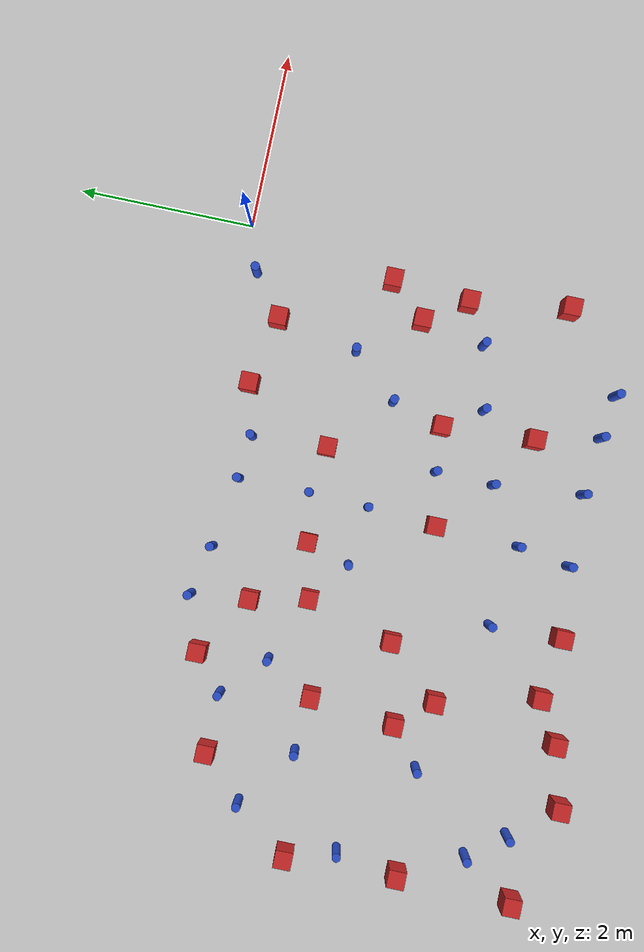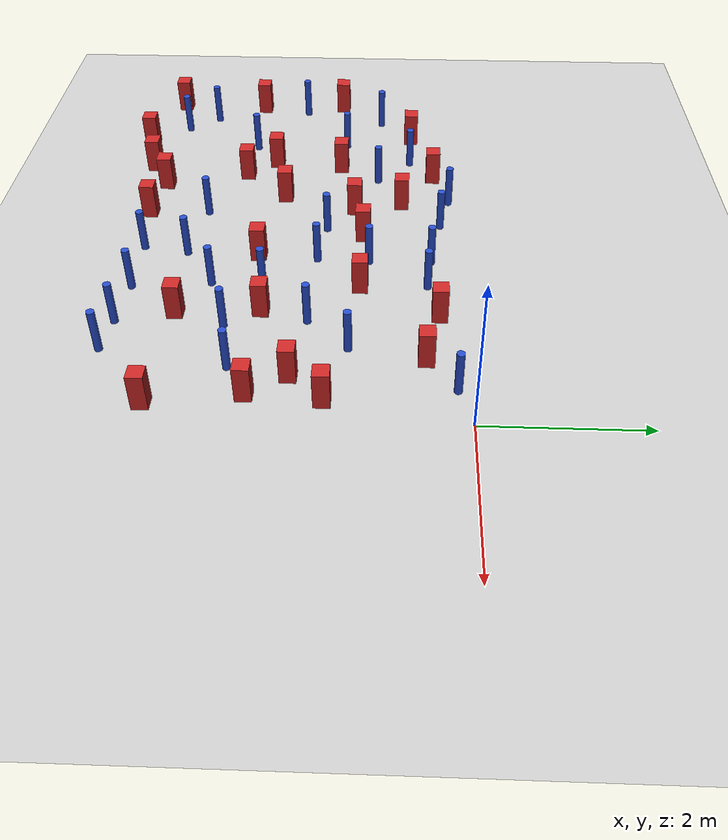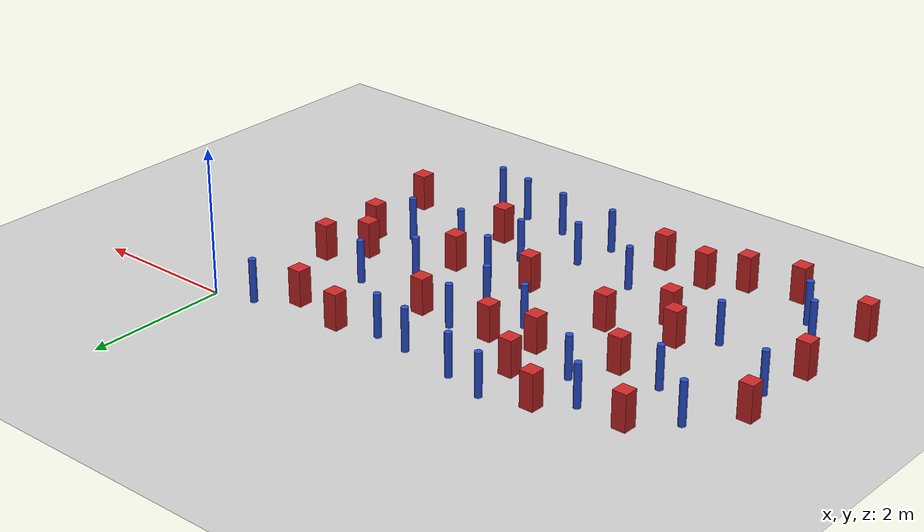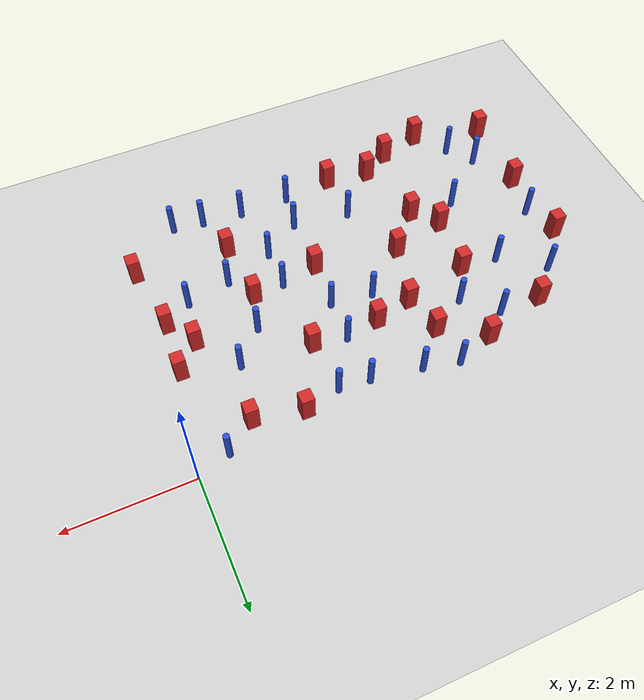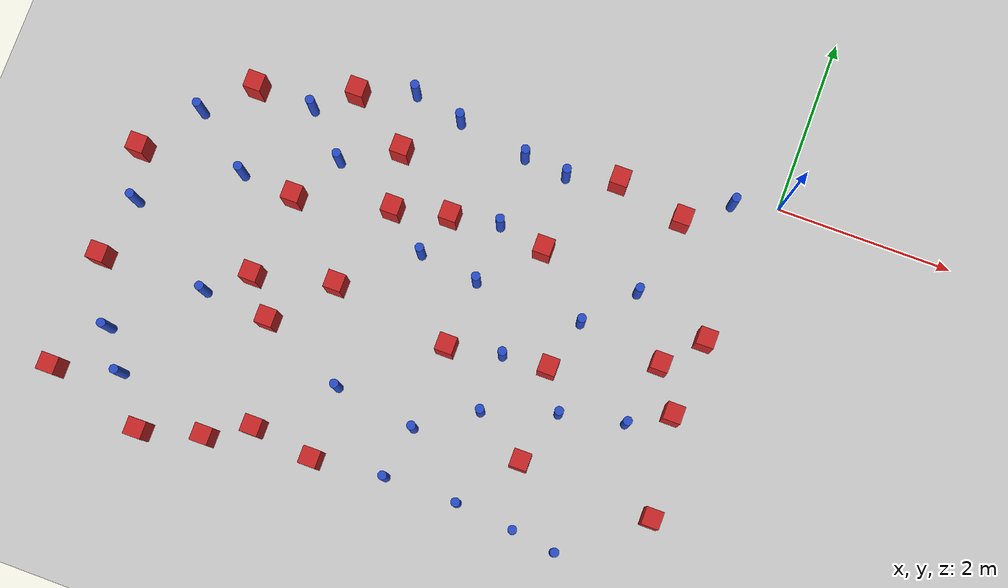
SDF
<sdf version="1.6">
 <world name="default">
  <model name="ground_plane">
   <static>1</static>
   <link name="link">
    <collision name="collision">
     <geometry><plane><normal>0 0 1</normal><size>100 100</size></plane></geometry>
     <surface><friction><ode><mu>100</mu><mu2>50</mu2></ode></friction></surface>
    </collision>
    <visual name="visual">
     <cast_shadows>0</cast_shadows>
     <geometry><plane><normal>0 0 1</normal><size>100 100</size></plane></geometry>
     <material>
      <ambient>1.0 1.0 1.0 1.0</ambient>
      <diffuse>0.8 0.8 0.8 1.0</diffuse>
      <specular>0.01 0.01 0.01 1.000000</specular>
     </material>
    </visual>
   </link>
  </model>
  <model name="pole_obstacle0">
   <static>true</static>
   <pose>-4.2503094902 -0.1919507945 -3.09024884793e-07 -7.19054271912e-07 -2.11315075122e-07 -1.9393550926e-07</pose>
   <link name="link">
    <pose>0 0 0.3 0 -0 0</pose>
    <inertial>
     <mass>1</mass>
     <inertia><ixx>0.145833</ixx><ixy>0</ixy><ixz>0</ixz><iyy>0.145833</iyy><iyz>0</iyz><izz>0.125</izz></inertia>
    </inertial>
    <collision name="collision">
     <geometry><cylinder><radius>0.05</radius><length>.6</length></cylinder></geometry>
    </collision>
    <visual name="visual">
     <geometry><cylinder><radius>0.05</radius><length>.6</length></cylinder></geometry>
     <material>
      <script><name>Gazebo/Blue</name><uri>file://media/materials/scripts/gazebo.material</uri></script>
     </material>
    </visual>
   </link>
  </model>
  <model name="pole_obstacle3">
   <static>true</static>
   <pose>-0.812782535777 -2.86212298678 -3.09024884793e-07 -7.19054271912e-07 -2.11315075129e-07 -1.93935509263e-07</pose>
   <link name="link">
    <pose>0 0 0.3 0 -0 0</pose>
    <inertial>
     <mass>1</mass>
     <inertia><ixx>0.145833</ixx><ixy>0</ixy><ixz>0</ixz><iyy>0.145833</iyy><iyz>0</iyz><izz>0.125</izz></inertia>
    </inertial>
    <collision name="collision">
     <geometry><cylinder><radius>0.05</radius><length>.6</length></cylinder></geometry>
    </collision>
    <visual name="visual">
     <geometry><cylinder><radius>0.05</radius><length>.6</length></cylinder></geometry>
     <material>
      <script><name>Gazebo/Blue</name><uri>file://media/materials/scripts/gazebo.material</uri></script>
     </material>
    </visual>
   </link>
  </model>
  <model name="pole_obstacle6">
   <static>true</static>
   <pose>-6.49435936635 -3.81956347133 -3.09024884793e-07 -7.19054271912e-07 -2.11315075144e-07 -1.93935509269e-07</pose>
   <link name="link">
    <pose>0 0 0.3 0 -0 0</pose>
    <inertial>
     <mass>1</mass>
     <inertia><ixx>0.145833</ixx><ixy>0</ixy><ixz>0</ixz><iyy>0.145833</iyy><iyz>0</iyz><izz>0.125</izz></inertia>
    </inertial>
    <collision name="collision">
     <geometry><cylinder><radius>0.05</radius><length>.6</length></cylinder></geometry>
    </collision>
    <visual name="visual">
     <geometry><cylinder><radius>0.05</radius><length>.6</length></cylinder></geometry>
     <material>
      <script><name>Gazebo/Blue</name><uri>file://media/materials/scripts/gazebo.material</uri></script>
     </material>
    </visual>
   </link>
  </model>
  <model name="square_post_obstacle4">
   <static>true</static>
   <pose>-0.213089348339 -3.73600585675 -4.36207812815e-07 3.75137919937e-06 9.77721102514e-07 2.47381364184e-05</pose>
   <link name="link">
    <pose>0 0 0.25 0 -0 0</pose>
    <inertial>
     <mass>100</mass>
     <inertia>
      <ixx>0.166667</ixx>
      <ixy>0</ixy>
      <ixz>0</ixz>
      <iyy>0.166667</iyy>
      <iyz>0</iyz>
      <izz>0.166667</izz>
     </inertia>
    </inertial>
    <collision name="collision"><geometry><box><size>.2 .2 .5</size></box></geometry></collision>
    <visual name="visual">
     <geometry><box><size>.2 .2 .5</size></box></geometry>
     <material>
      <script><name>Gazebo/Red</name><uri>file://media/materials/scripts/gazebo.material</uri></script>
     </material>
    </visual>
   </link>
  </model>
  <model name="square_post_obstacle7">
   <static>true</static>
   <pose>-5.10605497438 -1.75977822787 -4.36207812815e-07 3.75137919937e-06 9.77721102514e-07 2.47381364184e-05</pose>
   <link name="link">
    <pose>0 0 0.25 0 -0 0</pose>
    <inertial>
     <mass>100</mass>
     <inertia>
      <ixx>0.166667</ixx>
      <ixy>0</ixy>
      <ixz>0</ixz>
      <iyy>0.166667</iyy>
      <iyz>0</iyz>
      <izz>0.166667</izz>
     </inertia>
    </inertial>
    <collision name="collision"><geometry><box><size>.2 .2 .5</size></box></geometry></collision>
    <visual name="visual">
     <geometry><box><size>.2 .2 .5</size></box></geometry>
     <material>
      <script><name>Gazebo/Red</name><uri>file://media/materials/scripts/gazebo.material</uri></script>
     </material>
    </visual>
   </link>
  </model>
  <model name="square_post_obstacle12">
   <static>true</static>
   <pose>-3.40699818923 -1.369637165 -4.36207812815e-07 3.75137919937e-06 9.77721102514e-07 2.47381364184e-05</pose>
   <link name="link">
    <pose>0 0 0.25 0 -0 0</pose>
    <inertial>
     <mass>100</mass>
     <inertia>
      <ixx>0.166667</ixx>
      <ixy>0</ixy>
      <ixz>0</ixz>
      <iyy>0.166667</iyy>
      <iyz>0</iyz>
      <izz>0.166667</izz>
     </inertia>
    </inertial>
    <collision name="collision"><geometry><box><size>.2 .2 .5</size></box></geometry></collision>
    <visual name="visual">
     <geometry><box><size>.2 .2 .5</size></box></geometry>
     <material>
      <script><name>Gazebo/Red</name><uri>file://media/materials/scripts/gazebo.material</uri></script>
     </material>
    </visual>
   </link>
  </model>
  <model name="pole_obstacle19">
   <static>true</static>
   <pose>-1.53740964032 -3.01281853686 -3.09024884793e-07 -7.19054271912e-07 -2.11315075132e-07 -1.93935509263e-07</pose>
   <link name="link">
    <pose>0 0 0.3 0 -0 0</pose>
    <inertial>
     <mass>1</mass>
     <inertia><ixx>0.145833</ixx><ixy>0</ixy><ixz>0</ixz><iyy>0.145833</iyy><iyz>0</iyz><izz>0.125</izz></inertia>
    </inertial>
    <collision name="collision">
     <geometry><cylinder><radius>0.05</radius><length>.6</length></cylinder></geometry>
    </collision>
    <visual name="visual">
     <geometry><cylinder><radius>0.05</radius><length>.6</length></cylinder></geometry>
     <material>
      <script><name>Gazebo/Blue</name><uri>file://media/materials/scripts/gazebo.material</uri></script>
     </material>
    </visual>
   </link>
  </model>
  <model name="square_post_obstacle20">
   <static>true</static>
   <pose>-5.75726109787 -4.74485710924 -4.36207812815e-07 3.75137919937e-06 9.77721102514e-07 2.47381364184e-05</pose>
   <link name="link">
    <pose>0 0 0.25 0 -0 0</pose>
    <inertial>
     <mass>100</mass>
     <inertia>
      <ixx>0.166667</ixx>
      <ixy>0</ixy>
      <ixz>0</ixz>
      <iyy>0.166667</iyy>
      <iyz>0</iyz>
      <izz>0.166667</izz>
     </inertia>
    </inertial>
    <collision name="collision"><geometry><box><size>.2 .2 .5</size></box></geometry></collision>
    <visual name="visual">
     <geometry><box><size>.2 .2 .5</size></box></geometry>
     <material>
      <script><name>Gazebo/Red</name><uri>file://media/materials/scripts/gazebo.material</uri></script>
     </material>
    </visual>
   </link>
  </model>
  <model name="square_post_obstacle26">
   <static>true</static>
   <pose>-2.31092290906 -1.36635637237 -4.36207812815e-07 3.75137919937e-06 9.77721102514e-07 2.47381364184e-05</pose>
   <link name="link">
    <pose>0 0 0.25 0 -0 0</pose>
    <inertial>
     <mass>100</mass>
     <inertia>
      <ixx>0.166667</ixx>
      <ixy>0</ixy>
      <ixz>0</ixz>
      <iyy>0.166667</iyy>
      <iyz>0</iyz>
      <izz>0.166667</izz>
     </inertia>
    </inertial>
    <collision name="collision"><geometry><box><size>.2 .2 .5</size></box></geometry></collision>
    <visual name="visual">
     <geometry><box><size>.2 .2 .5</size></box></geometry>
     <material>
      <script><name>Gazebo/Red</name><uri>file://media/materials/scripts/gazebo.material</uri></script>
     </material>
    </visual>
   </link>
  </model>
  <model name="pole_obstacle32">
   <static>true</static>
   <pose>-2.97020964504 -3.70464598647 -3.09024884793e-07 -7.19054271912e-07 -2.11315075144e-07 -1.93935509271e-07</pose>
   <link name="link">
    <pose>0 0 0.3 0 -0 0</pose>
    <inertial>
     <mass>1</mass>
     <inertia><ixx>0.145833</ixx><ixy>0</ixy><ixz>0</ixz><iyy>0.145833</iyy><iyz>0</iyz><izz>0.125</izz></inertia>
    </inertial>
    <collision name="collision">
     <geometry><cylinder><radius>0.05</radius><length>.6</length></cylinder></geometry>
    </collision>
    <visual name="visual">
     <geometry><cylinder><radius>0.05</radius><length>.6</length></cylinder></geometry>
     <material>
      <script><name>Gazebo/Blue</name><uri>file://media/materials/scripts/gazebo.material</uri></script>
     </material>
    </visual>
   </link>
  </model>
  <model name="square_post_obstacle29">
   <static>true</static>
   <pose>-0.681254436834 -2.12540580142 -4.36207812815e-07 3.75137919937e-06 9.77721102514e-07 2.47381364184e-05</pose>
   <link name="link">
    <pose>0 0 0.25 0 -0 0</pose>
    <inertial>
     <mass>100</mass>
     <inertia>
      <ixx>0.166667</ixx>
      <ixy>0</ixy>
      <ixz>0</ixz>
      <iyy>0.166667</iyy>
      <iyz>0</iyz>
      <izz>0.166667</izz>
     </inertia>
    </inertial>
    <collision name="collision"><geometry><box><size>.2 .2 .5</size></box></geometry></collision>
    <visual name="visual">
     <geometry><box><size>.2 .2 .5</size></box></geometry>
     <material>
      <script><name>Gazebo/Red</name><uri>file://media/materials/scripts/gazebo.material</uri></script>
     </material>
    </visual>
   </link>
  </model>
  <model name="square_post_obstacle40">
   <static>true</static>
   <pose>-6.90692023751 -1.83136152221 -4.36207812815e-07 3.75137919937e-06 9.77721102514e-07 2.47381364184e-05</pose>
   <link name="link">
    <pose>0 0 0.25 0 -0 0</pose>
    <inertial>
     <mass>100</mass>
     <inertia>
      <ixx>0.166667</ixx>
      <ixy>0</ixy>
      <ixz>0</ixz>
      <iyy>0.166667</iyy>
      <iyz>0</iyz>
      <izz>0.166667</izz>
     </inertia>
    </inertial>
    <collision name="collision"><geometry><box><size>.2 .2 .5</size></box></geometry></collision>
    <visual name="visual">
     <geometry><box><size>.2 .2 .5</size></box></geometry>
     <material>
      <script><name>Gazebo/Red</name><uri>file://media/materials/scripts/gazebo.material</uri></script>
     </material>
    </visual>
   </link>
  </model>
  <model name="pole_obstacle55">
   <static>true</static>
   <pose>-3.07178950909 -4.30639800956 -3.09024884848e-07 -7.19054271903e-07 -2.11315075193e-07 -1.93935509285e-07</pose>
   <link name="link">
    <pose>0 0 0.3 0 -0 0</pose>
    <inertial>
     <mass>1</mass>
     <inertia><ixx>0.145833</ixx><ixy>0</ixy><ixz>0</ixz><iyy>0.145833</iyy><iyz>0</iyz><izz>0.125</izz></inertia>
    </inertial>
    <collision name="collision">
     <geometry><cylinder><radius>0.05</radius><length>.6</length></cylinder></geometry>
    </collision>
    <visual name="visual">
     <geometry><cylinder><radius>0.05</radius><length>.6</length></cylinder></geometry>
     <material>
      <script><name>Gazebo/Blue</name><uri>file://media/materials/scripts/gazebo.material</uri></script>
     </material>
    </visual>
   </link>
  </model>
  <model name="pole_obstacle64">
   <static>true</static>
   <pose>-3.90451596075 -3.568760979 -3.09024884793e-07 -7.19054271912e-07 -2.11315075144e-07 -1.93935509271e-07</pose>
   <link name="link">
    <pose>0 0 0.3 0 -0 0</pose>
    <inertial>
     <mass>1</mass>
     <inertia><ixx>0.145833</ixx><ixy>0</ixy><ixz>0</ixz><iyy>0.145833</iyy><iyz>0</iyz><izz>0.125</izz></inertia>
    </inertial>
    <collision name="collision">
     <geometry><cylinder><radius>0.05</radius><length>.6</length></cylinder></geometry>
    </collision>
    <visual name="visual">
     <geometry><cylinder><radius>0.05</radius><length>.6</length></cylinder></geometry>
     <material>
      <script><name>Gazebo/Blue</name><uri>file://media/materials/scripts/gazebo.material</uri></script>
     </material>
    </visual>
   </link>
  </model>
  <model name="pole_obstacle67">
   <static>true</static>
   <pose>-2.33162941624 -2.62102190679 -3.09024884793e-07 -7.19054271912e-07 -2.11315075144e-07 -1.93935509271e-07</pose>
   <link name="link">
    <pose>0 0 0.3 0 -0 0</pose>
    <inertial>
     <mass>1</mass>
     <inertia><ixx>0.145833</ixx><ixy>0</ixy><ixz>0</ixz><iyy>0.145833</iyy><iyz>0</iyz><izz>0.125</izz></inertia>
    </inertial>
    <collision name="collision">
     <geometry><cylinder><radius>0.05</radius><length>.6</length></cylinder></geometry>
    </collision>
    <visual name="visual">
     <geometry><cylinder><radius>0.05</radius><length>.6</length></cylinder></geometry>
     <material>
      <script><name>Gazebo/Blue</name><uri>file://media/materials/scripts/gazebo.material</uri></script>
     </material>
    </visual>
   </link>
  </model>
  <model name="square_post_obstacle51">
   <static>true</static>
   <pose>-4.02998142671 -1.51477494324 -4.36207812815e-07 3.75137919937e-06 9.77721102514e-07 2.47381364184e-05</pose>
   <link name="link">
    <pose>0 0 0.25 0 -0 0</pose>
    <inertial>
     <mass>100</mass>
     <inertia>
      <ixx>0.166667</ixx>
      <ixy>0</ixy>
      <ixz>0</ixz>
      <iyy>0.166667</iyy>
      <iyz>0</iyz>
      <izz>0.166667</izz>
     </inertia>
    </inertial>
    <collision name="collision"><geometry><box><size>.2 .2 .5</size></box></geometry></collision>
    <visual name="visual">
     <geometry><box><size>.2 .2 .5</size></box></geometry>
     <material>
      <script><name>Gazebo/Red</name><uri>file://media/materials/scripts/gazebo.material</uri></script>
     </material>
    </visual>
   </link>
  </model>
  <model name="square_post_obstacle54">
   <static>true</static>
   <pose>-3.88324763248 -4.38923243916 -4.36207812815e-07 3.75137919937e-06 9.77721102514e-07 2.47381364184e-05</pose>
   <link name="link">
    <pose>0 0 0.25 0 -0 0</pose>
    <inertial>
     <mass>100</mass>
     <inertia>
      <ixx>0.166667</ixx>
      <ixy>0</ixy>
      <ixz>0</ixz>
      <iyy>0.166667</iyy>
      <iyz>0</iyz>
      <izz>0.166667</izz>
     </inertia>
    </inertial>
    <collision name="collision"><geometry><box><size>.2 .2 .5</size></box></geometry></collision>
    <visual name="visual">
     <geometry><box><size>.2 .2 .5</size></box></geometry>
     <material>
      <script><name>Gazebo/Red</name><uri>file://media/materials/scripts/gazebo.material</uri></script>
     </material>
    </visual>
   </link>
  </model>
  <model name="square_post_obstacle57">
   <static>true</static>
   <pose>-0.3041883141 -1.70715179963 -4.36207812815e-07 3.75137919937e-06 9.77721102514e-07 2.47381364184e-05</pose>
   <link name="link">
    <pose>0 0 0.25 0 -0 0</pose>
    <inertial>
     <mass>100</mass>
     <inertia>
      <ixx>0.166667</ixx>
      <ixy>0</ixy>
      <ixz>0</ixz>
      <iyy>0.166667</iyy>
      <iyz>0</iyz>
      <izz>0.166667</izz>
     </inertia>
    </inertial>
    <collision name="collision"><geometry><box><size>.2 .2 .5</size></box></geometry></collision>
    <visual name="visual">
     <geometry><box><size>.2 .2 .5</size></box></geometry>
     <material>
      <script><name>Gazebo/Red</name><uri>file://media/materials/scripts/gazebo.material</uri></script>
     </material>
    </visual>
   </link>
  </model>
  <model name="square_post_obstacle62">
   <static>true</static>
   <pose>-4.31407832891 -2.51719437284 -4.36207812815e-07 3.75137919937e-06 9.77721102514e-07 2.47381364184e-05</pose>
   <link name="link">
    <pose>0 0 0.25 0 -0 0</pose>
    <inertial>
     <mass>100</mass>
     <inertia>
      <ixx>0.166667</ixx>
      <ixy>0</ixy>
      <ixz>0</ixz>
      <iyy>0.166667</iyy>
      <iyz>0</iyz>
      <izz>0.166667</izz>
     </inertia>
    </inertial>
    <collision name="collision"><geometry><box><size>.2 .2 .5</size></box></geometry></collision>
    <visual name="visual">
     <geometry><box><size>.2 .2 .5</size></box></geometry>
     <material>
      <script><name>Gazebo/Red</name><uri>file://media/materials/scripts/gazebo.material</uri></script>
     </material>
    </visual>
   </link>
  </model>
  <model name="pole_obstacle73">
   <static>true</static>
   <pose>-1.6498588806 -1.98894210723 -3.09024884793e-07 -7.19054271912e-07 -2.11315075135e-07 -1.93935509265e-07</pose>
   <link name="link">
    <pose>0 0 0.3 0 -0 0</pose>
    <inertial>
     <mass>1</mass>
     <inertia><ixx>0.145833</ixx><ixy>0</ixy><ixz>0</ixz><iyy>0.145833</iyy><iyz>0</iyz><izz>0.125</izz></inertia>
    </inertial>
    <collision name="collision">
     <geometry><cylinder><radius>0.05</radius><length>.6</length></cylinder></geometry>
    </collision>
    <visual name="visual">
     <geometry><cylinder><radius>0.05</radius><length>.6</length></cylinder></geometry>
     <material>
      <script><name>Gazebo/Blue</name><uri>file://media/materials/scripts/gazebo.material</uri></script>
     </material>
    </visual>
   </link>
  </model>
  <model name="pole_obstacle78">
   <static>true</static>
   <pose>-2.88197179262 -1.95619258831 -3.09024884793e-07 -7.19054271912e-07 -2.11315075128e-07 -1.93935509262e-07</pose>
   <link name="link">
    <pose>0 0 0.3 0 -0 0</pose>
    <inertial>
     <mass>1</mass>
     <inertia><ixx>0.145833</ixx><ixy>0</ixy><ixz>0</ixz><iyy>0.145833</iyy><iyz>0</iyz><izz>0.125</izz></inertia>
    </inertial>
    <collision name="collision">
     <geometry><cylinder><radius>0.05</radius><length>.6</length></cylinder></geometry>
    </collision>
    <visual name="visual">
     <geometry><cylinder><radius>0.05</radius><length>.6</length></cylinder></geometry>
     <material>
      <script><name>Gazebo/Blue</name><uri>file://media/materials/scripts/gazebo.material</uri></script>
     </material>
    </visual>
   </link>
  </model>
  <model name="pole_obstacle81">
   <static>true</static>
   <pose>-2.24288750559 -4.30279348574 -3.09024884793e-07 -7.19054271912e-07 -2.11315075134e-07 -1.93935509266e-07</pose>
   <link name="link">
    <pose>0 0 0.3 0 -0 0</pose>
    <inertial>
     <mass>1</mass>
     <inertia><ixx>0.145833</ixx><ixy>0</ixy><ixz>0</ixz><iyy>0.145833</iyy><iyz>0</iyz><izz>0.125</izz></inertia>
    </inertial>
    <collision name="collision">
     <geometry><cylinder><radius>0.05</radius><length>.6</length></cylinder></geometry>
    </collision>
    <visual name="visual">
     <geometry><cylinder><radius>0.05</radius><length>.6</length></cylinder></geometry>
     <material>
      <script><name>Gazebo/Blue</name><uri>file://media/materials/scripts/gazebo.material</uri></script>
     </material>
    </visual>
   </link>
  </model>
  <model name="square_post_obstacle76">
   <static>true</static>
   <pose>-6.89948918565 -4.42027496373 -4.36207812815e-07 3.75137919937e-06 9.77721102514e-07 2.47381364184e-05</pose>
   <link name="link">
    <pose>0 0 0.25 0 -0 0</pose>
    <inertial>
     <mass>100</mass>
     <inertia>
      <ixx>0.166667</ixx>
      <ixy>0</ixy>
      <ixz>0</ixz>
      <iyy>0.166667</iyy>
      <iyz>0</iyz>
      <izz>0.166667</izz>
     </inertia>
    </inertial>
    <collision name="collision"><geometry><box><size>.2 .2 .5</size></box></geometry></collision>
    <visual name="visual">
     <geometry><box><size>.2 .2 .5</size></box></geometry>
     <material>
      <script><name>Gazebo/Red</name><uri>file://media/materials/scripts/gazebo.material</uri></script>
     </material>
    </visual>
   </link>
  </model>
  <model name="square_post_obstacle80">
   <static>true</static>
   <pose>-5.06296657724 -4.55981769942 -4.36207812815e-07 3.75137919937e-06 9.77721102514e-07 2.47381364184e-05</pose>
   <link name="link">
    <pose>0 0 0.25 0 -0 0</pose>
    <inertial>
     <mass>100</mass>
     <inertia>
      <ixx>0.166667</ixx>
      <ixy>0</ixy>
      <ixz>0</ixz>
      <iyy>0.166667</iyy>
      <iyz>0</iyz>
      <izz>0.166667</izz>
     </inertia>
    </inertial>
    <collision name="collision"><geometry><box><size>.2 .2 .5</size></box></geometry></collision>
    <visual name="visual">
     <geometry><box><size>.2 .2 .5</size></box></geometry>
     <material>
      <script><name>Gazebo/Red</name><uri>file://media/materials/scripts/gazebo.material</uri></script>
     </material>
    </visual>
   </link>
  </model>
  <model name="pole_obstacle93">
   <static>true</static>
   <pose>-2.85989029447 -0.45373459007 -3.09024884793e-07 -7.19054271912e-07 -2.11315075129e-07 -1.93935509263e-07</pose>
   <link name="link">
    <pose>0 0 0.3 0 -0 0</pose>
    <inertial>
     <mass>1</mass>
     <inertia><ixx>0.145833</ixx><ixy>0</ixy><ixz>0</ixz><iyy>0.145833</iyy><iyz>0</iyz><izz>0.125</izz></inertia>
    </inertial>
    <collision name="collision">
     <geometry><cylinder><radius>0.05</radius><length>.6</length></cylinder></geometry>
    </collision>
    <visual name="visual">
     <geometry><cylinder><radius>0.05</radius><length>.6</length></cylinder></geometry>
     <material>
      <script><name>Gazebo/Blue</name><uri>file://media/materials/scripts/gazebo.material</uri></script>
     </material>
    </visual>
   </link>
  </model>
  <model name="pole_obstacle98">
   <static>true</static>
   <pose>-5.74174673199 -1.70941870862 -3.09024884793e-07 -7.19054271912e-07 -2.11315075124e-07 -1.93935509261e-07</pose>
   <link name="link">
    <pose>0 0 0.3 0 -0 0</pose>
    <inertial>
     <mass>1</mass>
     <inertia><ixx>0.145833</ixx><ixy>0</ixy><ixz>0</ixz><iyy>0.145833</iyy><iyz>0</iyz><izz>0.125</izz></inertia>
    </inertial>
    <collision name="collision">
     <geometry><cylinder><radius>0.05</radius><length>.6</length></cylinder></geometry>
    </collision>
    <visual name="visual">
     <geometry><cylinder><radius>0.05</radius><length>.6</length></cylinder></geometry>
     <material>
      <script><name>Gazebo/Blue</name><uri>file://media/materials/scripts/gazebo.material</uri></script>
     </material>
    </visual>
   </link>
  </model>
  <model name="pole_obstacle101">
   <static>true</static>
   <pose>-1.07321869047 -4.43828804594 -3.09024884793e-07 -7.19054271912e-07 -2.11315075134e-07 -1.93935509265e-07</pose>
   <link name="link">
    <pose>0 0 0.3 0 -0 0</pose>
    <inertial>
     <mass>1</mass>
     <inertia><ixx>0.145833</ixx><ixy>0</ixy><ixz>0</ixz><iyy>0.145833</iyy><iyz>0</iyz><izz>0.125</izz></inertia>
    </inertial>
    <collision name="collision">
     <geometry><cylinder><radius>0.05</radius><length>.6</length></cylinder></geometry>
    </collision>
    <visual name="visual">
     <geometry><cylinder><radius>0.05</radius><length>.6</length></cylinder></geometry>
     <material>
      <script><name>Gazebo/Blue</name><uri>file://media/materials/scripts/gazebo.material</uri></script>
     </material>
    </visual>
   </link>
  </model>
  <model name="square_post_obstacle95">
   <static>true</static>
   <pose>-1.81508012524 -2.5799216322 -4.36207812815e-07 3.75137919937e-06 9.77721102514e-07 2.47381364184e-05</pose>
   <link name="link">
    <pose>0 0 0.25 0 -0 0</pose>
    <inertial>
     <mass>100</mass>
     <inertia>
      <ixx>0.166667</ixx>
      <ixy>0</ixy>
      <ixz>0</ixz>
      <iyy>0.166667</iyy>
      <iyz>0</iyz>
      <izz>0.166667</izz>
     </inertia>
    </inertial>
    <collision name="collision"><geometry><box><size>.2 .2 .5</size></box></geometry></collision>
    <visual name="visual">
     <geometry><box><size>.2 .2 .5</size></box></geometry>
     <material>
      <script><name>Gazebo/Red</name><uri>file://media/materials/scripts/gazebo.material</uri></script>
     </material>
    </visual>
   </link>
  </model>
  <model name="pole_obstacle105">
   <static>true</static>
   <pose>-4.78471107066 -1.20498965532 -3.09024884793e-07 -7.19054271912e-07 -2.11315075124e-07 -1.93935509261e-07</pose>
   <link name="link">
    <pose>0 0 0.3 0 -0 0</pose>
    <inertial>
     <mass>1</mass>
     <inertia><ixx>0.145833</ixx><ixy>0</ixy><ixz>0</ixz><iyy>0.145833</iyy><iyz>0</iyz><izz>0.125</izz></inertia>
    </inertial>
    <collision name="collision">
     <geometry><cylinder><radius>0.05</radius><length>.6</length></cylinder></geometry>
    </collision>
    <visual name="visual">
     <geometry><cylinder><radius>0.05</radius><length>.6</length></cylinder></geometry>
     <material>
      <script><name>Gazebo/Blue</name><uri>file://media/materials/scripts/gazebo.material</uri></script>
     </material>
    </visual>
   </link>
  </model>
  <model name="square_post_obstacle100">
   <static>true</static>
   <pose>-2.9380964271 -2.74049869834 -4.36207812815e-07 3.75137919937e-06 9.77721102514e-07 2.47381364184e-05</pose>
   <link name="link">
    <pose>0 0 0.25 0 -0 0</pose>
    <inertial>
     <mass>100</mass>
     <inertia>
      <ixx>0.166667</ixx>
      <ixy>0</ixy>
      <ixz>0</ixz>
      <iyy>0.166667</iyy>
      <iyz>0</iyz>
      <izz>0.166667</izz>
     </inertia>
    </inertial>
    <collision name="collision"><geometry><box><size>.2 .2 .5</size></box></geometry></collision>
    <visual name="visual">
     <geometry><box><size>.2 .2 .5</size></box></geometry>
     <material>
      <script><name>Gazebo/Red</name><uri>file://media/materials/scripts/gazebo.material</uri></script>
     </material>
    </visual>
   </link>
  </model>
  <model name="square_post_obstacle112">
   <static>true</static>
   <pose>-0.369597336501 -2.59763633289 -4.36207812815e-07 3.75137919937e-06 9.77721102514e-07 2.47381364184e-05</pose>
   <link name="link">
    <pose>0 0 0.25 0 -0 0</pose>
    <inertial>
     <mass>100</mass>
     <inertia>
      <ixx>0.166667</ixx>
      <ixy>0</ixy>
      <ixz>0</ixz>
      <iyy>0.166667</iyy>
      <iyz>0</iyz>
      <izz>0.166667</izz>
     </inertia>
    </inertial>
    <collision name="collision"><geometry><box><size>.2 .2 .5</size></box></geometry></collision>
    <visual name="visual">
     <geometry><box><size>.2 .2 .5</size></box></geometry>
     <material>
      <script><name>Gazebo/Red</name><uri>file://media/materials/scripts/gazebo.material</uri></script>
     </material>
    </visual>
   </link>
  </model>
  <model name="square_post_obstacle114">
   <static>true</static>
   <pose>-1.78104032288 -0.357195857043 -4.36207812815e-07 3.75137919937e-06 9.77721102514e-07 2.47381364184e-05</pose>
   <link name="link">
    <pose>0 0 0.25 0 -0 0</pose>
    <inertial>
     <mass>100</mass>
     <inertia>
      <ixx>0.166667</ixx>
      <ixy>0</ixy>
      <ixz>0</ixz>
      <iyy>0.166667</iyy>
      <iyz>0</iyz>
      <izz>0.166667</izz>
     </inertia>
    </inertial>
    <collision name="collision"><geometry><box><size>.2 .2 .5</size></box></geometry></collision>
    <visual name="visual">
     <geometry><box><size>.2 .2 .5</size></box></geometry>
     <material>
      <script><name>Gazebo/Red</name><uri>file://media/materials/scripts/gazebo.material</uri></script>
     </material>
    </visual>
   </link>
  </model>
  <model name="pole_obstacle116">
   <static>true</static>
   <pose>-5.65106227504 -3.08250471629 -3.09024884793e-07 -7.19054271912e-07 -2.11315075144e-07 -1.93935509269e-07</pose>
   <link name="link">
    <pose>0 0 0.3 0 -0 0</pose>
    <inertial>
     <mass>1</mass>
     <inertia><ixx>0.145833</ixx><ixy>0</ixy><ixz>0</ixz><iyy>0.145833</iyy><iyz>0</iyz><izz>0.125</izz></inertia>
    </inertial>
    <collision name="collision">
     <geometry><cylinder><radius>0.05</radius><length>.6</length></cylinder></geometry>
    </collision>
    <visual name="visual">
     <geometry><cylinder><radius>0.05</radius><length>.6</length></cylinder></geometry>
     <material>
      <script><name>Gazebo/Blue</name><uri>file://media/materials/scripts/gazebo.material</uri></script>
     </material>
    </visual>
   </link>
  </model>
  <model name="pole_obstacle117">
   <static>true</static>
   <pose>-3.67381402669 -0.320353111934 -3.09024884793e-07 -7.19054271912e-07 -2.1131507512e-07 -1.93935509259e-07</pose>
   <link name="link">
    <pose>0 0 0.3 0 -0 0</pose>
    <inertial>
     <mass>1</mass>
     <inertia><ixx>0.145833</ixx><ixy>0</ixy><ixz>0</ixz><iyy>0.145833</iyy><iyz>0</iyz><izz>0.125</izz></inertia>
    </inertial>
    <collision name="collision">
     <geometry><cylinder><radius>0.05</radius><length>.6</length></cylinder></geometry>
    </collision>
    <visual name="visual">
     <geometry><cylinder><radius>0.05</radius><length>.6</length></cylinder></geometry>
     <material>
      <script><name>Gazebo/Blue</name><uri>file://media/materials/scripts/gazebo.material</uri></script>
     </material>
    </visual>
   </link>
  </model>
  <model name="square_post_obstacle118">
   <static>true</static>
   <pose>-1.75015717879 -3.63961278025 -4.36207812815e-07 3.75137919937e-06 9.77721102514e-07 2.47381364184e-05</pose>
   <link name="link">
    <pose>0 0 0.25 0 -0 0</pose>
    <inertial>
     <mass>100</mass>
     <inertia>
      <ixx>0.166667</ixx>
      <ixy>0</ixy>
      <ixz>0</ixz>
      <iyy>0.166667</iyy>
      <iyz>0</iyz>
      <izz>0.166667</izz>
     </inertia>
    </inertial>
    <collision name="collision"><geometry><box><size>.2 .2 .5</size></box></geometry></collision>
    <visual name="visual">
     <geometry><box><size>.2 .2 .5</size></box></geometry>
     <material>
      <script><name>Gazebo/Red</name><uri>file://media/materials/scripts/gazebo.material</uri></script>
     </material>
    </visual>
   </link>
  </model>
  <model name="pole_obstacle130">
   <static>true</static>
   <pose>-0.518738952857 -0.167539581022 -3.09024884793e-07 -7.19054271912e-07 -2.11315075138e-07 -1.93935509266e-07</pose>
   <link name="link">
    <pose>0 0 0.3 0 -0 0</pose>
    <inertial>
     <mass>1</mass>
     <inertia><ixx>0.145833</ixx><ixy>0</ixy><ixz>0</ixz><iyy>0.145833</iyy><iyz>0</iyz><izz>0.125</izz></inertia>
    </inertial>
    <collision name="collision">
     <geometry><cylinder><radius>0.05</radius><length>.6</length></cylinder></geometry>
    </collision>
    <visual name="visual">
     <geometry><cylinder><radius>0.05</radius><length>.6</length></cylinder></geometry>
     <material>
      <script><name>Gazebo/Blue</name><uri>file://media/materials/scripts/gazebo.material</uri></script>
     </material>
    </visual>
   </link>
  </model>
  <model name="pole_obstacle131">
   <static>true</static>
   <pose>-1.1722620043 -1.46042457854 -3.09024884793e-07 -7.19054271912e-07 -2.1131507513e-07 -1.93935509263e-07</pose>
   <link name="link">
    <pose>0 0 0.3 0 -0 0</pose>
    <inertial>
     <mass>1</mass>
     <inertia><ixx>0.145833</ixx><ixy>0</ixy><ixz>0</ixz><iyy>0.145833</iyy><iyz>0</iyz><izz>0.125</izz></inertia>
    </inertial>
    <collision name="collision">
     <geometry><cylinder><radius>0.05</radius><length>.6</length></cylinder></geometry>
    </collision>
    <visual name="visual">
     <geometry><cylinder><radius>0.05</radius><length>.6</length></cylinder></geometry>
     <material>
      <script><name>Gazebo/Blue</name><uri>file://media/materials/scripts/gazebo.material</uri></script>
     </material>
    </visual>
   </link>
  </model>
  <model name="square_post_obstacle129">
   <static>true</static>
   <pose>-5.94466422758 -0.735476081693 -4.36207812815e-07 3.75137919937e-06 9.77721102514e-07 2.47381364184e-05</pose>
   <link name="link">
    <pose>0 0 0.25 0 -0 0</pose>
    <inertial>
     <mass>100</mass>
     <inertia>
      <ixx>0.166667</ixx>
      <ixy>0</ixy>
      <ixz>0</ixz>
      <iyy>0.166667</iyy>
      <iyz>0</iyz>
      <izz>0.166667</izz>
     </inertia>
    </inertial>
    <collision name="collision"><geometry><box><size>.2 .2 .5</size></box></geometry></collision>
    <visual name="visual">
     <geometry><box><size>.2 .2 .5</size></box></geometry>
     <material>
      <script><name>Gazebo/Red</name><uri>file://media/materials/scripts/gazebo.material</uri></script>
     </material>
    </visual>
   </link>
  </model>
  <model name="pole_obstacle135">
   <static>true</static>
   <pose>-1.57508477774 -4.36805235707 -3.09024884793e-07 -7.19054271912e-07 -2.11315075134e-07 -1.93935509265e-07</pose>
   <link name="link">
    <pose>0 0 0.3 0 -0 0</pose>
    <inertial>
     <mass>1</mass>
     <inertia><ixx>0.145833</ixx><ixy>0</ixy><ixz>0</ixz><iyy>0.145833</iyy><iyz>0</iyz><izz>0.125</izz></inertia>
    </inertial>
    <collision name="collision">
     <geometry><cylinder><radius>0.05</radius><length>.6</length></cylinder></geometry>
    </collision>
    <visual name="visual">
     <geometry><cylinder><radius>0.05</radius><length>.6</length></cylinder></geometry>
     <material>
      <script><name>Gazebo/Blue</name><uri>file://media/materials/scripts/gazebo.material</uri></script>
     </material>
    </visual>
   </link>
  </model>
  <model name="pole_obstacle139">
   <static>true</static>
   <pose>-6.42578930346 -1.2025327204 -3.09024884793e-07 -7.19054271912e-07 -2.11315075124e-07 -1.93935509261e-07</pose>
   <link name="link">
    <pose>0 0 0.3 0 -0 0</pose>
    <inertial>
     <mass>1</mass>
     <inertia><ixx>0.145833</ixx><ixy>0</ixy><ixz>0</ixz><iyy>0.145833</iyy><iyz>0</iyz><izz>0.125</izz></inertia>
    </inertial>
    <collision name="collision">
     <geometry><cylinder><radius>0.05</radius><length>.6</length></cylinder></geometry>
    </collision>
    <visual name="visual">
     <geometry><cylinder><radius>0.05</radius><length>.6</length></cylinder></geometry>
     <material>
      <script><name>Gazebo/Blue</name><uri>file://media/materials/scripts/gazebo.material</uri></script>
     </material>
    </visual>
   </link>
  </model>
  <model name="square_post_obstacle135">
   <static>true</static>
   <pose>-4.86352223609 -0.410714448858 -4.36207812815e-07 3.75137919937e-06 9.77721102514e-07 2.47381364184e-05</pose>
   <link name="link">
    <pose>0 0 0.25 0 -0 0</pose>
    <inertial>
     <mass>100</mass>
     <inertia>
      <ixx>0.166667</ixx>
      <ixy>0</ixy>
      <ixz>0</ixz>
      <iyy>0.166667</iyy>
      <iyz>0</iyz>
      <izz>0.166667</izz>
     </inertia>
    </inertial>
    <collision name="collision"><geometry><box><size>.2 .2 .5</size></box></geometry></collision>
    <visual name="visual">
     <geometry><box><size>.2 .2 .5</size></box></geometry>
     <material>
      <script><name>Gazebo/Red</name><uri>file://media/materials/scripts/gazebo.material</uri></script>
     </material>
    </visual>
   </link>
  </model>
  <model name="square_post_obstacle136">
   <static>true</static>
   <pose>-5.21726181243 -2.73314917423 -4.36207812815e-07 3.75137919937e-06 9.77721102514e-07 2.47381364184e-05</pose>
   <link name="link">
    <pose>0 0 0.25 0 -0 0</pose>
    <inertial>
     <mass>100</mass>
     <inertia>
      <ixx>0.166667</ixx>
      <ixy>0</ixy>
      <ixz>0</ixz>
      <iyy>0.166667</iyy>
      <iyz>0</iyz>
      <izz>0.166667</izz>
     </inertia>
    </inertial>
    <collision name="collision"><geometry><box><size>.2 .2 .5</size></box></geometry></collision>
    <visual name="visual">
     <geometry><box><size>.2 .2 .5</size></box></geometry>
     <material>
      <script><name>Gazebo/Red</name><uri>file://media/materials/scripts/gazebo.material</uri></script>
     </material>
    </visual>
   </link>
  </model>
  <model name="pole_obstacle142">
   <static>true</static>
   <pose>-6.73453343381 -2.39804696035 -3.09024884793e-07 -7.19054271912e-07 -2.11315075144e-07 -1.93935509269e-07</pose>
   <link name="link">
    <pose>0 0 0.3 0 -0 0</pose>
    <inertial>
     <mass>1</mass>
     <inertia><ixx>0.145833</ixx><ixy>0</ixy><ixz>0</ixz><iyy>0.145833</iyy><iyz>0</iyz><izz>0.125</izz></inertia>
    </inertial>
    <collision name="collision">
     <geometry><cylinder><radius>0.05</radius><length>.6</length></cylinder></geometry>
    </collision>
    <visual name="visual">
     <geometry><cylinder><radius>0.05</radius><length>.6</length></cylinder></geometry>
     <material>
      <script><name>Gazebo/Blue</name><uri>file://media/materials/scripts/gazebo.material</uri></script>
     </material>
    </visual>
   </link>
  </model>
  <model name="pole_obstacle143">
   <static>true</static>
   <pose>-3.56485451272 -1.87090802129 -3.09024884793e-07 -7.19054271912e-07 -2.11315075122e-07 -1.93935509259e-07</pose>
   <link name="link">
    <pose>0 0 0.3 0 -0 0</pose>
    <inertial>
     <mass>1</mass>
     <inertia><ixx>0.145833</ixx><ixy>0</ixy><ixz>0</ixz><iyy>0.145833</iyy><iyz>0</iyz><izz>0.125</izz></inertia>
    </inertial>
    <collision name="collision">
     <geometry><cylinder><radius>0.05</radius><length>.6</length></cylinder></geometry>
    </collision>
    <visual name="visual">
     <geometry><cylinder><radius>0.05</radius><length>.6</length></cylinder></geometry>
     <material>
      <script><name>Gazebo/Blue</name><uri>file://media/materials/scripts/gazebo.material</uri></script>
     </material>
    </visual>
   </link>
  </model>
  <model name="pole_obstacle164">
   <static>true</static>
   <pose>-6.1769185626 -4.23757362609 -3.09024884793e-07 -7.19054271911e-07 -2.1131507516e-07 -1.93935509277e-07</pose>
   <link name="link">
    <pose>0 0 0.3 0 -0 0</pose>
    <inertial>
     <mass>1</mass>
     <inertia><ixx>0.145833</ixx><ixy>0</ixy><ixz>0</ixz><iyy>0.145833</iyy><iyz>0</iyz><izz>0.125</izz></inertia>
    </inertial>
    <collision name="collision">
     <geometry><cylinder><radius>0.05</radius><length>.6</length></cylinder></geometry>
    </collision>
    <visual name="visual">
     <geometry><cylinder><radius>0.05</radius><length>.6</length></cylinder></geometry>
     <material>
      <script><name>Gazebo/Blue</name><uri>file://media/materials/scripts/gazebo.material</uri></script>
     </material>
    </visual>
   </link>
  </model>
  <model name="square_post_obstacle164">
   <static>true</static>
   <pose>-4.59261790176 -4.28662256313 -4.36207812815e-07 3.75137919937e-06 9.77721102514e-07 2.47381364184e-05</pose>
   <link name="link">
    <pose>0 0 0.25 0 -0 0</pose>
    <inertial>
     <mass>100</mass>
     <inertia>
      <ixx>0.166667</ixx>
      <ixy>0</ixy>
      <ixz>0</ixz>
      <iyy>0.166667</iyy>
      <iyz>0</iyz>
      <izz>0.166667</izz>
     </inertia>
    </inertial>
    <collision name="collision"><geometry><box><size>.2 .2 .5</size></box></geometry></collision>
    <visual name="visual">
     <geometry><box><size>.2 .2 .5</size></box></geometry>
     <material>
      <script><name>Gazebo/Red</name><uri>file://media/materials/scripts/gazebo.material</uri></script>
     </material>
    </visual>
   </link>
  </model>
  <model name="square_post_obstacle169">
   <static>true</static>
   <pose>-4.87652031014 -3.13342987172 -4.36207812815e-07 3.75137919937e-06 9.77721102514e-07 2.47381364184e-05</pose>
   <link name="link">
    <pose>0 0 0.25 0 -0 0</pose>
    <inertial>
     <mass>100</mass>
     <inertia>
      <ixx>0.166667</ixx>
      <ixy>0</ixy>
      <ixz>0</ixz>
      <iyy>0.166667</iyy>
      <iyz>0</iyz>
      <izz>0.166667</izz>
     </inertia>
    </inertial>
    <collision name="collision"><geometry><box><size>.2 .2 .5</size></box></geometry></collision>
    <visual name="visual">
     <geometry><box><size>.2 .2 .5</size></box></geometry>
     <material>
      <script><name>Gazebo/Red</name><uri>file://media/materials/scripts/gazebo.material</uri></script>
     </material>
    </visual>
   </link>
  </model>
  <model name="pole_obstacle178">
   <static>true</static>
   <pose>-2.36026712178 -0.500335294 -3.09024884793e-07 -7.19054271912e-07 -2.11315075119e-07 -1.93935509258e-07</pose>
   <link name="link">
    <pose>0 0 0.3 0 -0 0</pose>
    <inertial>
     <mass>1</mass>
     <inertia><ixx>0.145833</ixx><ixy>0</ixy><ixz>0</ixz><iyy>0.145833</iyy><iyz>0</iyz><izz>0.125</izz></inertia>
    </inertial>
    <collision name="collision">
     <geometry><cylinder><radius>0.05</radius><length>.6</length></cylinder></geometry>
    </collision>
    <visual name="visual">
     <geometry><cylinder><radius>0.05</radius><length>.6</length></cylinder></geometry>
     <material>
      <script><name>Gazebo/Blue</name><uri>file://media/materials/scripts/gazebo.material</uri></script>
     </material>
    </visual>
   </link>
  </model>
  <model name="pole_obstacle190">
   <static>true</static>
   <pose>-5.27222630022 -0.747569947496 -3.09024884793e-07 -7.19054271912e-07 -2.11315075134e-07 -1.93935509265e-07</pose>
   <link name="link">
    <pose>0 0 0.3 0 -0 0</pose>
    <inertial>
     <mass>1</mass>
     <inertia><ixx>0.145833</ixx><ixy>0</ixy><ixz>0</ixz><iyy>0.145833</iyy><iyz>0</iyz><izz>0.125</izz></inertia>
    </inertial>
    <collision name="collision">
     <geometry><cylinder><radius>0.05</radius><length>.6</length></cylinder></geometry>
    </collision>
    <visual name="visual">
     <geometry><cylinder><radius>0.05</radius><length>.6</length></cylinder></geometry>
     <material>
      <script><name>Gazebo/Blue</name><uri>file://media/materials/scripts/gazebo.material</uri></script>
     </material>
    </visual>
   </link>
  </model>
  <model name="square_post_obstacle198">
   <static>true</static>
   <pose>-6.86058532768 -3.10505594508 -4.36207812815e-07 3.75137919937e-06 9.77721102514e-07 2.47381364184e-05</pose>
   <link name="link">
    <pose>0 0 0.25 0 -0 0</pose>
    <inertial>
     <mass>100</mass>
     <inertia>
      <ixx>0.166667</ixx>
      <ixy>0</ixy>
      <ixz>0</ixz>
      <iyy>0.166667</iyy>
      <iyz>0</iyz>
      <izz>0.166667</izz>
     </inertia>
    </inertial>
    <collision name="collision"><geometry><box><size>.2 .2 .5</size></box></geometry></collision>
    <visual name="visual">
     <geometry><box><size>.2 .2 .5</size></box></geometry>
     <material>
      <script><name>Gazebo/Red</name><uri>file://media/materials/scripts/gazebo.material</uri></script>
     </material>
    </visual>
   </link>
  </model>
  <model name="pole_obstacle197">
   <static>true</static>
   <pose>-2.85397217701 -1.26937479266 -3.09024884793e-07 -7.19054271912e-07 -2.11315075122e-07 -1.93935509259e-07</pose>
   <link name="link">
    <pose>0 0 0.3 0 -0 0</pose>
    <inertial>
     <mass>1</mass>
     <inertia><ixx>0.145833</ixx><ixy>0</ixy><ixz>0</ixz><iyy>0.145833</iyy><iyz>0</iyz><izz>0.125</izz></inertia>
    </inertial>
    <collision name="collision">
     <geometry><cylinder><radius>0.05</radius><length>.6</length></cylinder></geometry>
    </collision>
    <visual name="visual">
     <geometry><cylinder><radius>0.05</radius><length>.6</length></cylinder></geometry>
     <material>
      <script><name>Gazebo/Blue</name><uri>file://media/materials/scripts/gazebo.material</uri></script>
     </material>
    </visual>
   </link>
  </model>
  <model name="square_post_obstacle211">
   <static>true</static>
   <pose>-4.17014559825 -0.859023723801 -4.36207812815e-07 3.75137919937e-06 9.77721102514e-07 2.47381364184e-05</pose>
   <link name="link">
    <pose>0 0 0.25 0 -0 0</pose>
    <inertial>
     <mass>100</mass>
     <inertia>
      <ixx>0.166667</ixx>
      <ixy>0</ixy>
      <ixz>0</ixz>
      <iyy>0.166667</iyy>
      <iyz>0</iyz>
      <izz>0.166667</izz>
     </inertia>
    </inertial>
    <collision name="collision"><geometry><box><size>.2 .2 .5</size></box></geometry></collision>
    <visual name="visual">
     <geometry><box><size>.2 .2 .5</size></box></geometry>
     <material>
      <script><name>Gazebo/Red</name><uri>file://media/materials/scripts/gazebo.material</uri></script>
     </material>
    </visual>
   </link>
  </model>
  <model name="square_post_obstacle213">
   <static>true</static>
   <pose>-0.991255396458 -0.527151019383 -4.36207812815e-07 3.75137919937e-06 9.77721102514e-07 2.47381364184e-05</pose>
   <link name="link">
    <pose>0 0 0.25 0 -0 0</pose>
    <inertial>
     <mass>100</mass>
     <inertia>
      <ixx>0.166667</ixx>
      <ixy>0</ixy>
      <ixz>0</ixz>
      <iyy>0.166667</iyy>
      <iyz>0</iyz>
      <izz>0.166667</izz>
     </inertia>
    </inertial>
    <collision name="collision"><geometry><box><size>.2 .2 .5</size></box></geometry></collision>
    <visual name="visual">
     <geometry><box><size>.2 .2 .5</size></box></geometry>
     <material>
      <script><name>Gazebo/Red</name><uri>file://media/materials/scripts/gazebo.material</uri></script>
     </material>
    </visual>
   </link>
  </model>
  <model name="pole_obstacle215">
   <static>true</static>
   <pose>-2.34445999024 -3.28511997922 -3.09024884793e-07 -7.19054271912e-07 -2.11315075128e-07 -1.93935509262e-07</pose>
   <link name="link">
    <pose>0 0 0.3 0 -0 0</pose>
    <inertial>
     <mass>1</mass>
     <inertia><ixx>0.145833</ixx><ixy>0</ixy><ixz>0</ixz><iyy>0.145833</iyy><iyz>0</iyz><izz>0.125</izz></inertia>
    </inertial>
    <collision name="collision">
     <geometry><cylinder><radius>0.05</radius><length>.6</length></cylinder></geometry>
    </collision>
    <visual name="visual">
     <geometry><cylinder><radius>0.05</radius><length>.6</length></cylinder></geometry>
     <material>
      <script><name>Gazebo/Blue</name><uri>file://media/materials/scripts/gazebo.material</uri></script>
     </material>
    </visual>
   </link>
  </model>
 </world>
</sdf>
